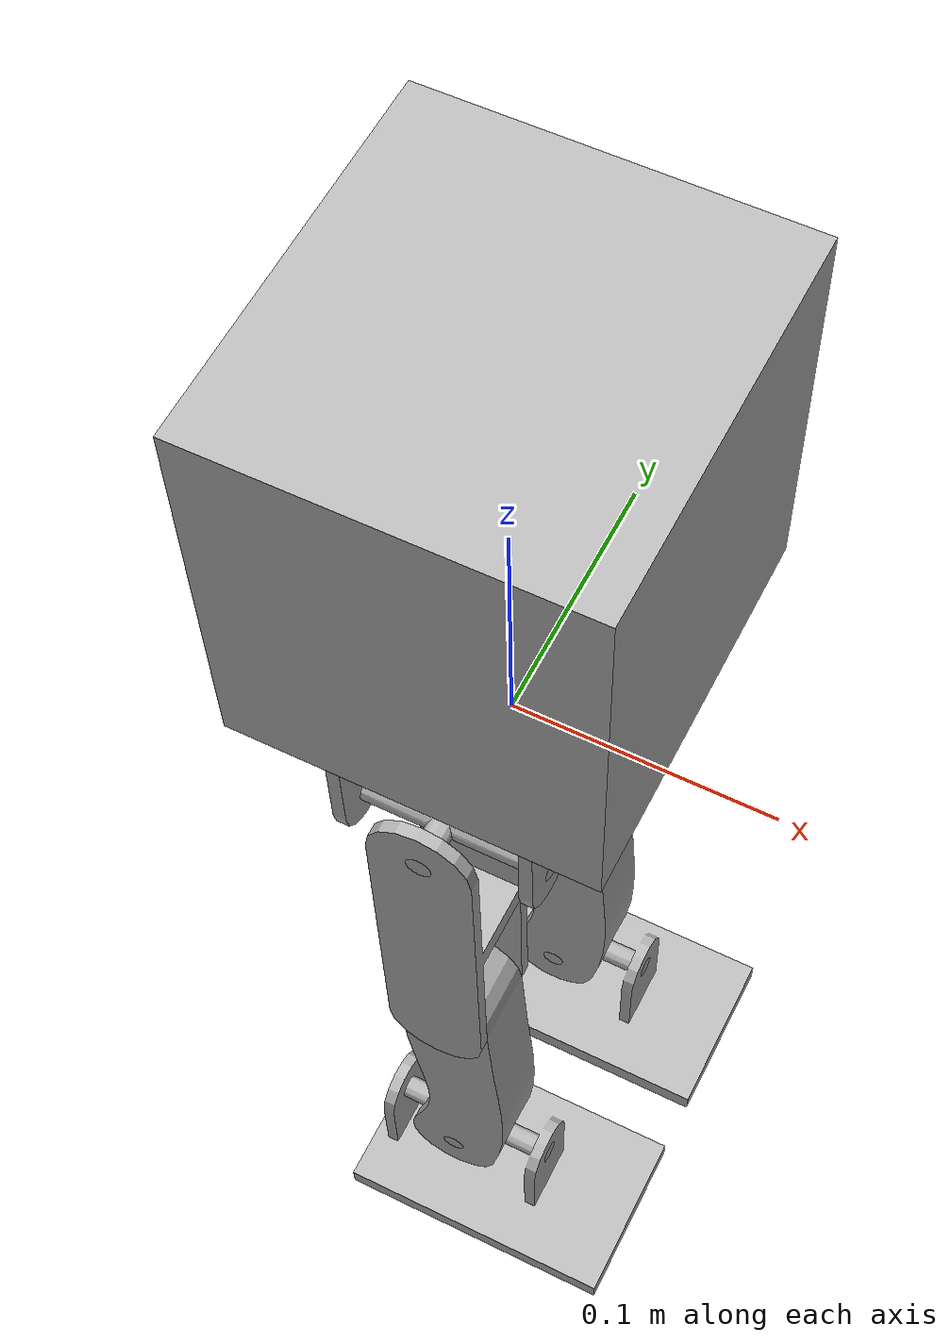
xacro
<?xml version="1.0" ?>
<robot name="LeggedRobot" xmlns:xacro="http://www.ros.org/wiki/xacro">

<xacro:include filename="$(find LeggedRobot_description)/urdf/materials.xacro" />
<xacro:include filename="$(find LeggedRobot_description)/urdf/LeggedRobot.trans" />
<xacro:include filename="$(find LeggedRobot_description)/urdf/LeggedRobot.gazebo" />
<link name="base_link">
  <inertial>
    <origin xyz="-6.346783925452715e-17 -5.077427140362172e-17 0.12027129926675365" rpy="0 0 0"/>
    <mass value="5.237474955117158"/>
    <inertia ixx="0.018691" iyy="0.017694" izz="0.016812" ixy="-0.0" iyz="-0.0" ixz="-0.0"/>
  </inertial>
  <visual>
    <origin xyz="0 0 0" rpy="0 0 0"/>
    <geometry>
      <mesh filename="../meshes/base_link.stl"/>
    </geometry>
    <material name="silver"/>
  </visual>
  <collision>
    <origin xyz="0 0 0" rpy="0 0 0"/>
    <geometry>
      <mesh filename="../meshes/base_link.stl"/>
    </geometry>
  </collision>
</link>

<link name="Upper_leg_v2__1__1">
  <inertial>
    <origin xyz="2.6254089049651695e-16 0.02000000000000001 -0.07192876729347267" rpy="0 0 0"/>
    <mass value="0.1431308285816426"/>
    <inertia ixx="0.000346" iyy="0.000326" izz="5.6e-05" ixy="0.0" iyz="0.0" ixz="0.0"/>
  </inertial>
  <visual>
    <origin xyz="-0.0 -0.03 0.000399" rpy="0 0 0"/>
    <geometry>
      <mesh filename="../meshes/Upper_leg_v2__1__1.stl"/>
    </geometry>
    <material name="silver"/>
  </visual>
  <collision>
    <origin xyz="-0.0 -0.03 0.000399" rpy="0 0 0"/>
    <geometry>
      <mesh filename="../meshes/Upper_leg_v2__1__1.stl"/>
    </geometry>
  </collision>
</link>

<link name="Lower_leg_v2__1__1">
  <inertial>
    <origin xyz="0.0036759081332830533 0.015000001797078708 -0.058757577943002876" rpy="0 0 0"/>
    <mass value="0.301868005898131"/>
    <inertia ixx="0.000629" iyy="0.000642" izz="6.2e-05" ixy="0.0" iyz="0.0" ixz="2.2e-05"/>
  </inertial>
  <visual>
    <origin xyz="-0.0 -0.035 0.140399" rpy="0 0 0"/>
    <geometry>
      <mesh filename="../meshes/Lower_leg_v2__1__1.stl"/>
    </geometry>
    <material name="silver"/>
  </visual>
  <collision>
    <origin xyz="-0.0 -0.035 0.140399" rpy="0 0 0"/>
    <geometry>
      <mesh filename="../meshes/Lower_leg_v2__1__1.stl"/>
    </geometry>
  </collision>
</link>

<link name="Lower_leg_v2_1">
  <inertial>
    <origin xyz="0.003675908133282827 0.015000001797078687 -0.05875791626802551" rpy="0 0 0"/>
    <mass value="0.301868005898131"/>
    <inertia ixx="0.000629" iyy="0.000642" izz="6.2e-05" ixy="0.0" iyz="0.0" ixz="2.2e-05"/>
  </inertial>
  <visual>
    <origin xyz="-0.0 0.065 0.140258" rpy="0 0 0"/>
    <geometry>
      <mesh filename="../meshes/Lower_leg_v2_1.stl"/>
    </geometry>
    <material name="silver"/>
  </visual>
  <collision>
    <origin xyz="-0.0 0.065 0.140258" rpy="0 0 0"/>
    <geometry>
      <mesh filename="../meshes/Lower_leg_v2_1.stl"/>
    </geometry>
  </collision>
</link>

<link name="Ankle_v1__1__1">
  <inertial>
    <origin xyz="0.001958378003147534 0.014999777263784618 5.238469396035006e-05" rpy="0 0 0"/>
    <mass value="0.013454867594222361"/>
    <inertia ixx="0.0" iyy="5e-06" izz="5e-06" ixy="-0.0" iyz="-0.0" ixz="-0.0"/>
  </inertial>
  <visual>
    <origin xyz="-0.0 0.065 0.280258" rpy="0 0 0"/>
    <geometry>
      <mesh filename="../meshes/Ankle_v1__1__1.stl"/>
    </geometry>
    <material name="silver"/>
  </visual>
  <collision>
    <origin xyz="-0.0 0.065 0.280258" rpy="0 0 0"/>
    <geometry>
      <mesh filename="../meshes/Ankle_v1__1__1.stl"/>
    </geometry>
  </collision>
</link>

<link name="Ankle_v1__2__1">
  <inertial>
    <origin xyz="0.001958378003147778 0.01499977726378466 5.27230189829031e-05" rpy="0 0 0"/>
    <mass value="0.013454867594222361"/>
    <inertia ixx="0.0" iyy="5e-06" izz="5e-06" ixy="-0.0" iyz="-0.0" ixz="-0.0"/>
  </inertial>
  <visual>
    <origin xyz="-0.0 -0.035 0.280399" rpy="0 0 0"/>
    <geometry>
      <mesh filename="../meshes/Ankle_v1__2__1.stl"/>
    </geometry>
    <material name="silver"/>
  </visual>
  <collision>
    <origin xyz="-0.0 -0.035 0.280399" rpy="0 0 0"/>
    <geometry>
      <mesh filename="../meshes/Ankle_v1__2__1.stl"/>
    </geometry>
  </collision>
</link>

<link name="Foot_v1__1__1">
  <inertial>
    <origin xyz="0.05260285295726415 1.0137375216351385e-07 -0.03676333019729189" rpy="0 0 0"/>
    <mass value="0.18191482193416827"/>
    <inertia ixx="9.7e-05" iyy="0.000254" izz="0.000307" ixy="0.0" iyz="-0.0" ixz="1e-05"/>
  </inertial>
  <visual>
    <origin xyz="0.035 -0.05 0.280328" rpy="0 0 0"/>
    <geometry>
      <mesh filename="../meshes/Foot_v1__1__1.stl"/>
    </geometry>
    <material name="silver"/>
  </visual>
  <collision>
    <origin xyz="0.035 -0.05 0.280328" rpy="0 0 0"/>
    <geometry>
      <mesh filename="../meshes/Foot_v1__1__1.stl"/>
    </geometry>
  </collision>
</link>

<link name="Foot_v1_1">
  <inertial>
    <origin xyz="0.052602852957263996 1.0137375208024713e-07 -0.03676266852231441" rpy="0 0 0"/>
    <mass value="0.18191482193416827"/>
    <inertia ixx="9.7e-05" iyy="0.000254" izz="0.000307" ixy="0.0" iyz="-0.0" ixz="1e-05"/>
  </inertial>
  <visual>
    <origin xyz="0.035 0.05 0.280188" rpy="0 0 0"/>
    <geometry>
      <mesh filename="../meshes/Foot_v1_1.stl"/>
    </geometry>
    <material name="silver"/>
  </visual>
  <collision>
    <origin xyz="0.035 0.05 0.280188" rpy="0 0 0"/>
    <geometry>
      <mesh filename="../meshes/Foot_v1_1.stl"/>
    </geometry>
  </collision>
</link>

<link name="Hip_joint_v1__1__1">
  <inertial>
    <origin xyz="-0.03822219731670742 2.0634426864396538e-07 2.243850123965943e-05" rpy="0 0 0"/>
    <mass value="0.015566398617684687"/>
    <inertia ixx="1e-06" iyy="5e-06" izz="6e-06" ixy="0.0" iyz="-0.0" ixz="0.0"/>
  </inertial>
  <visual>
    <origin xyz="-0.04 0.05 0.000328" rpy="0 0 0"/>
    <geometry>
      <mesh filename="../meshes/Hip_joint_v1__1__1.stl"/>
    </geometry>
    <material name="silver"/>
  </visual>
  <collision>
    <origin xyz="-0.04 0.05 0.000328" rpy="0 0 0"/>
    <geometry>
      <mesh filename="../meshes/Hip_joint_v1__1__1.stl"/>
    </geometry>
  </collision>
</link>

<link name="Upper_leg_v2_1">
  <inertial>
    <origin xyz="3.523342660544597e-17 0.019999999999999962 -0.07192910561849525" rpy="0 0 0"/>
    <mass value="0.1431308285816426"/>
    <inertia ixx="0.000346" iyy="0.000326" izz="5.6e-05" ixy="-0.0" iyz="0.0" ixz="0.0"/>
  </inertial>
  <visual>
    <origin xyz="-0.0 0.07 0.000258" rpy="0 0 0"/>
    <geometry>
      <mesh filename="../meshes/Upper_leg_v2_1.stl"/>
    </geometry>
    <material name="silver"/>
  </visual>
  <collision>
    <origin xyz="-0.0 0.07 0.000258" rpy="0 0 0"/>
    <geometry>
      <mesh filename="../meshes/Upper_leg_v2_1.stl"/>
    </geometry>
  </collision>
</link>

<link name="Hip_v1_1">
  <inertial>
    <origin xyz="0.002298444106988769 -8.467524528557591e-07 -0.013356564577291896" rpy="0 0 0"/>
    <mass value="0.07120981938348954"/>
    <inertia ixx="2.6e-05" iyy="7e-05" izz="5.4e-05" ixy="0.0" iyz="0.0" ixz="0.0"/>
  </inertial>
  <visual>
    <origin xyz="0.0 0.05 -0.045" rpy="0 0 0"/>
    <geometry>
      <mesh filename="../meshes/Hip_v1_1.stl"/>
    </geometry>
    <material name="silver"/>
  </visual>
  <collision>
    <origin xyz="0.0 0.05 -0.045" rpy="0 0 0"/>
    <geometry>
      <mesh filename="../meshes/Hip_v1_1.stl"/>
    </geometry>
  </collision>
</link>

<link name="Hip_v1__1__1">
  <inertial>
    <origin xyz="0.0022984441069888646 -8.467524527377979e-07 -0.013356564577291966" rpy="0 0 0"/>
    <mass value="0.07120981938348954"/>
    <inertia ixx="2.6e-05" iyy="7e-05" izz="5.4e-05" ixy="0.0" iyz="0.0" ixz="0.0"/>
  </inertial>
  <visual>
    <origin xyz="0.0 -0.05 -0.045" rpy="0 0 0"/>
    <geometry>
      <mesh filename="../meshes/Hip_v1__1__1.stl"/>
    </geometry>
    <material name="silver"/>
  </visual>
  <collision>
    <origin xyz="0.0 -0.05 -0.045" rpy="0 0 0"/>
    <geometry>
      <mesh filename="../meshes/Hip_v1__1__1.stl"/>
    </geometry>
  </collision>
</link>

<link name="Hip_joint_v1_1">
  <inertial>
    <origin xyz="-0.03822219731670722 -2.063442687480488e-07 -2.3112192325615494e-05" rpy="0 0 0"/>
    <mass value="0.015566398617684687"/>
    <inertia ixx="1e-06" iyy="5e-06" izz="6e-06" ixy="-0.0" iyz="-0.0" ixz="-0.0"/>
  </inertial>
  <visual>
    <origin xyz="-0.04 -0.05 0.000328" rpy="0 0 0"/>
    <geometry>
      <mesh filename="../meshes/Hip_joint_v1_1.stl"/>
    </geometry>
    <material name="silver"/>
  </visual>
  <collision>
    <origin xyz="-0.04 -0.05 0.000328" rpy="0 0 0"/>
    <geometry>
      <mesh filename="../meshes/Hip_joint_v1_1.stl"/>
    </geometry>
  </collision>
</link>

<joint name="left_hip_pitch" type="continuous">
  <origin xyz="-0.04 -0.02 -7.1e-05" rpy="0 0 0"/>
  <parent link="Hip_joint_v1_1"/>
  <child link="Upper_leg_v2__1__1"/>
  <axis xyz="-0.0 -1.0 -0.0"/>
</joint>

<joint name="left_knee" type="continuous">
  <origin xyz="0.0 0.005 -0.14" rpy="0 0 0"/>
  <parent link="Upper_leg_v2__1__1"/>
  <child link="Lower_leg_v2__1__1"/>
  <axis xyz="0.0 1.0 0.0"/>
</joint>

<joint name="right_knee" type="continuous">
  <origin xyz="0.0 0.005 -0.14" rpy="0 0 0"/>
  <parent link="Upper_leg_v2_1"/>
  <child link="Lower_leg_v2_1"/>
  <axis xyz="0.0 1.0 0.0"/>
</joint>

<joint name="right_ankle_pitch" type="continuous">
  <origin xyz="0.0 0.0 -0.14" rpy="0 0 0"/>
  <parent link="Lower_leg_v2_1"/>
  <child link="Ankle_v1__1__1"/>
  <axis xyz="-0.0 -1.0 -0.0"/>
</joint>

<joint name="left_ankle_pitch" type="continuous">
  <origin xyz="0.0 0.0 -0.14" rpy="0 0 0"/>
  <parent link="Lower_leg_v2__1__1"/>
  <child link="Ankle_v1__2__1"/>
  <axis xyz="-0.0 -1.0 -0.0"/>
</joint>

<joint name="left_ankle_roll" type="continuous">
  <origin xyz="-0.035 0.015 7.1e-05" rpy="0 0 0"/>
  <parent link="Ankle_v1__2__1"/>
  <child link="Foot_v1__1__1"/>
  <axis xyz="-1.0 -0.0 -0.0"/>
</joint>

<joint name="right_ankle_roll" type="continuous">
  <origin xyz="-0.035 0.015 7e-05" rpy="0 0 0"/>
  <parent link="Ankle_v1__1__1"/>
  <child link="Foot_v1_1"/>
  <axis xyz="-1.0 0.0 -0.0"/>
</joint>

<joint name="right_hip_roll" type="continuous">
  <origin xyz="0.04 0.0 -0.045328" rpy="0 0 0"/>
  <parent link="Hip_v1_1"/>
  <child link="Hip_joint_v1__1__1"/>
  <axis xyz="-1.0 0.0 -0.0"/>
</joint>

<joint name="right_hip_pitch" type="continuous">
  <origin xyz="-0.04 -0.02 7e-05" rpy="0 0 0"/>
  <parent link="Hip_joint_v1__1__1"/>
  <child link="Upper_leg_v2_1"/>
  <axis xyz="-0.0 -1.0 -0.0"/>
</joint>

<joint name="left_hip_yaw" type="continuous">
  <origin xyz="0.0 -0.05 0.045" rpy="0 0 0"/>
  <parent link="base_link"/>
  <child link="Hip_v1_1"/>
  <axis xyz="-0.0 0.0 1.0"/>
</joint>

<joint name="right_hip_yaw" type="continuous">
  <origin xyz="0.0 0.05 0.045" rpy="0 0 0"/>
  <parent link="base_link"/>
  <child link="Hip_v1__1__1"/>
  <axis xyz="-0.0 0.0 1.0"/>
</joint>

<joint name="left_hip_roll" type="continuous">
  <origin xyz="0.04 0.0 -0.045328" rpy="0 0 0"/>
  <parent link="Hip_v1__1__1"/>
  <child link="Hip_joint_v1_1"/>
  <axis xyz="-1.0 0.0 -0.0"/>
</joint>

</robot>

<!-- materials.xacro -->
<robot name="LeggedRobot" xmlns:xacro="http://www.ros.org/wiki/xacro" >

<material name="silver">
  <color rgba="0.700 0.700 0.700 1.000"/>
</material>

</robot>

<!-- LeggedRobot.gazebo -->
<robot name="LeggedRobot" xmlns:xacro="http://www.ros.org/wiki/xacro" >

<xacro:property name="body_color" value="Gazebo/Silver" />

<gazebo>
  <plugin name="control" filename="libgazebo_ros_control.so"/>
</gazebo>
<gazebo reference="base_link">
  <material>${body_color}</material>
  <mu1>0.2</mu1>
  <mu2>0.2</mu2>
  <selfCollide>true</selfCollide>
  <gravity>true</gravity>
</gazebo>

<gazebo reference="Upper_leg_v2__1__1">
  <material>${body_color}</material>
  <mu1>0.2</mu1>
  <mu2>0.2</mu2>
  <selfCollide>true</selfCollide>
</gazebo>

<gazebo reference="Lower_leg_v2__1__1">
  <material>${body_color}</material>
  <mu1>0.2</mu1>
  <mu2>0.2</mu2>
  <selfCollide>true</selfCollide>
</gazebo>

<gazebo reference="Lower_leg_v2_1">
  <material>${body_color}</material>
  <mu1>0.2</mu1>
  <mu2>0.2</mu2>
  <selfCollide>true</selfCollide>
</gazebo>

<gazebo reference="Ankle_v1__1__1">
  <material>${body_color}</material>
  <mu1>0.2</mu1>
  <mu2>0.2</mu2>
  <selfCollide>true</selfCollide>
</gazebo>

<gazebo reference="Ankle_v1__2__1">
  <material>${body_color}</material>
  <mu1>0.2</mu1>
  <mu2>0.2</mu2>
  <selfCollide>true</selfCollide>
</gazebo>

<gazebo reference="Foot_v1__1__1">
  <material>${body_color}</material>
  <mu1>0.2</mu1>
  <mu2>0.2</mu2>
  <selfCollide>true</selfCollide>
</gazebo>

<gazebo reference="Foot_v1_1">
  <material>${body_color}</material>
  <mu1>0.2</mu1>
  <mu2>0.2</mu2>
  <selfCollide>true</selfCollide>
</gazebo>

<gazebo reference="Hip_joint_v1__1__1">
  <material>${body_color}</material>
  <mu1>0.2</mu1>
  <mu2>0.2</mu2>
  <selfCollide>true</selfCollide>
</gazebo>

<gazebo reference="Upper_leg_v2_1">
  <material>${body_color}</material>
  <mu1>0.2</mu1>
  <mu2>0.2</mu2>
  <selfCollide>true</selfCollide>
</gazebo>

<gazebo reference="Hip_v1_1">
  <material>${body_color}</material>
  <mu1>0.2</mu1>
  <mu2>0.2</mu2>
  <selfCollide>true</selfCollide>
</gazebo>

<gazebo reference="Hip_v1__1__1">
  <material>${body_color}</material>
  <mu1>0.2</mu1>
  <mu2>0.2</mu2>
  <selfCollide>true</selfCollide>
</gazebo>

<gazebo reference="Hip_joint_v1_1">
  <material>${body_color}</material>
  <mu1>0.2</mu1>
  <mu2>0.2</mu2>
  <selfCollide>true</selfCollide>
</gazebo>

</robot>
